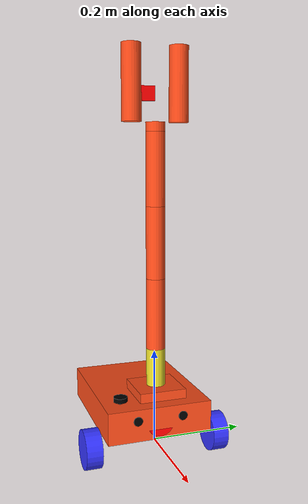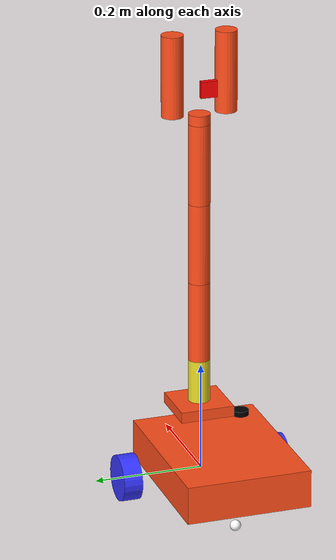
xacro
<?xml version="1.0"?>
<robot xmlns:xacro="http://www.ros.org/wiki/xacro"  name="robot">

    <xacro:arg name="use_ros2_control" default="true"/>
    <xacro:arg name="sim_mode" default="false"/>

    <xacro:include filename="robot_core.xacro" />
    <xacro:include filename="arm_robot.xacro" />
    <xacro:include filename="inertial_macros.xacro" />
    <xacro:if value="$(arg use_ros2_control)">
        <xacro:include filename="ros2_control.xacro" />
    </xacro:if>
    <xacro:unless value="$(arg use_ros2_control)">
        <xacro:include filename="gazebo_control.xacro" />
    </xacro:unless>
    <xacro:include filename="lidar.xacro" />

    <xacro:include filename="depth_camera.xacro" />

    <xacro:include filename="face.xacro" />
</robot>

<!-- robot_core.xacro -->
<robot xmlns:xacro="http://www.ros.org/wiki/xacro" >

    <xacro:include filename="inertial_macros.xacro"/>

    <xacro:property name="chassis_length" value="0.31"/>
    <xacro:property name="chassis_width" value="0.23"/>
    <xacro:property name="chassis_height" value="0.07"/>
    <xacro:property name="chassis_mass" value="1.0"/>
    <xacro:property name="wheel_radius" value="0.0425"/>
    <xacro:property name="wheel_thickness" value="0.035"/>
    <xacro:property name="wheel_mass" value="0.05"/>
    <xacro:property name="wheel_offset_x" value="0.266"/>
    <xacro:property name="wheel_offset_y" value="0.142"/>
    <xacro:property name="wheel_offset_z" value="-0.02"/>
    <xacro:property name="caster_wheel_radius" value="0.01"/>
    <xacro:property name="caster_wheel_mass" value="0.01"/>
    <xacro:property name="caster_wheel_offset_x" value="0.075"/>
    <xacro:property name="caster_wheel_offset_z" value="${wheel_offset_z - wheel_radius + caster_wheel_radius}"/>

    <material name="white">
        <color rgba="1 1 1 1" />
    </material>

    <material name="orange">
        <color rgba="1 0.3 0.1 1"/>
    </material>

    <material name="blue">
        <color rgba="0.2 0.2 1 1"/>
    </material>

    <material name="black">
        <color rgba="0 0 0 1"/>
    </material>

    <material name="red">
        <color rgba="1 0 0 1"/>
    </material>

    <!-- BASE LINK -->

    <link name="base_link">

    </link>

    <!-- BASE_FOOTPRINT LINK -->

    <joint name="base_footprint_joint" type="fixed">
        <parent link="base_link"/>
        <child link="base_footprint"/>
        <origin xyz="0 0 0" rpy="0 0 0"/>
    </joint>

    <link name="base_footprint">
    </link>

    <!-- CHASSIS LINK -->

    <joint name="chassis_joint" type="fixed">
        <parent link="base_link"/>
        <child link="chassis"/>
        <origin xyz="${-wheel_offset_x} 0 ${-wheel_offset_z}"/>
    </joint>

    <link name="chassis">
        <visual>
            <origin xyz="${chassis_length/2} 0 ${chassis_height/2}"/>
            <geometry>
                <box size="${chassis_length} ${chassis_width} ${chassis_height}"/>
            </geometry>
            <material name="orange"/>
        </visual>
        <collision>
            <origin xyz="${chassis_length/2} 0 ${chassis_height/2}"/>
            <geometry>
                <box size="${chassis_length} ${chassis_width} ${chassis_height}"/>
            </geometry>
        </collision>
        <xacro:inertial_box mass="0.5" x="${chassis_length}" y="${chassis_width}" z="${chassis_height}">
            <origin xyz="${chassis_length/2} 0 ${chassis_height/2}" rpy="0 0 0"/>
        </xacro:inertial_box>
    </link>

    <gazebo reference="chassis">
        <material>Gazebo/Orange</material>
    </gazebo>

    <!-- LEFT WHEEL LINK -->

    <joint name="left_wheel_joint" type="continuous">
        <parent link="base_link"/>
        <child link="left_wheel"/>
        <origin xyz="0 ${wheel_offset_y} 0" rpy="-${pi/2} 0 0" />
        <axis xyz="0 0 1"/>
    </joint>

    <link name="left_wheel">
        <visual>
            <geometry>
                <cylinder radius="${wheel_radius}" length="${wheel_thickness}"/>
            </geometry>
            <material name="blue"/>
        </visual>
        <collision>
            <geometry>
                <sphere radius="${wheel_radius}"/>
            </geometry>
        </collision>
        <xacro:inertial_cylinder mass="${wheel_mass}" length="${wheel_thickness}" radius="${wheel_radius}">
            <origin xyz="0 0 0" rpy="0 0 0"/>
        </xacro:inertial_cylinder>
    </link>

    <gazebo reference="left_wheel">
        <material>Gazebo/Blue</material>
    </gazebo>

    <!-- RIGHT WHEEL LINK -->

    <joint name="right_wheel_joint" type="continuous">
        <parent link="base_link"/>
        <child link="right_wheel"/>
        <origin xyz="0 ${-wheel_offset_y} 0" rpy="${pi/2} 0 0" />
        <axis xyz="0 0 -1"/>
    </joint>

    <link name="right_wheel">
        <visual>
            <geometry>
                <cylinder radius="${wheel_radius}" length="${wheel_thickness}"/>
            </geometry>
            <material name="blue"/>
        </visual>
        <collision>
            <geometry>
                <sphere radius="${wheel_radius}"/>
            </geometry>
        </collision>
        <xacro:inertial_cylinder mass="${wheel_mass}" length="${wheel_thickness}" radius="${wheel_radius}">
            <origin xyz="0 0 0" rpy="0 0 0"/>
        </xacro:inertial_cylinder>
    </link>

    <gazebo reference="right_wheel">
        <material>Gazebo/Blue</material>
    </gazebo>

    <!-- CASTER WHEEL LINK -->

    <joint name="caster_wheel_joint" type="fixed">
        <parent link="chassis"/>
        <child link="caster_wheel"/>
        <origin xyz="${caster_wheel_offset_x} 0 ${caster_wheel_offset_z}"/>
    </joint>

    <link name="caster_wheel">
        <visual>
            <geometry>
                <sphere radius="${caster_wheel_radius}"/>
            </geometry>
            <material name="white"/>
        </visual>
        <collision>
            <geometry>
                <sphere radius="${caster_wheel_radius}"/>
            </geometry>
        </collision>
        <xacro:inertial_sphere mass="${caster_wheel_mass}" radius="${caster_wheel_radius}">
            <origin xyz="0 0 0" rpy="0 0 0"/>
        </xacro:inertial_sphere>
    </link>

    <gazebo reference="caster_wheel">
        <material>Gazebo/White</material>
        <mu1 value="0.001"/>
        <mu2 value="0.001"/>
    </gazebo>

</robot>

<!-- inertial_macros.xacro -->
<robot xmlns:xacro="http://www.ros.org/wiki/xacro" >

    <!-- Specify some standard inertial calculations https://en.wikipedia.org/wiki/List_of_moments_of_inertia -->
    <!-- These make use of xacro's mathematical functionality -->

    <xacro:macro name="inertial_sphere" params="mass radius *origin">
        <inertial>
            <xacro:insert_block name="origin"/>
            <mass value="${mass}" />
            <inertia ixx="${(2/5) * mass * (radius*radius)}" ixy="0.0" ixz="0.0"
                    iyy="${(2/5) * mass * (radius*radius)}" iyz="0.0"
                    izz="${(2/5) * mass * (radius*radius)}" />
        </inertial>
    </xacro:macro>

    <xacro:macro name="inertial_box" params="mass x y z *origin">
        <inertial>
            <xacro:insert_block name="origin"/>
            <mass value="${mass}" />
            <inertia ixx="${(1/12) * mass * (y*y+z*z)}" ixy="0.0" ixz="0.0"
                    iyy="${(1/12) * mass * (x*x+z*z)}" iyz="0.0"
                    izz="${(1/12) * mass * (x*x+y*y)}" />
        </inertial>
    </xacro:macro>

    <xacro:macro name="inertial_cylinder" params="mass length radius *origin">
        <inertial>
            <xacro:insert_block name="origin"/>
            <mass value="${mass}" />
            <inertia ixx="${(1/12) * mass * (3*radius*radius + length*length)}" ixy="0.0" ixz="0.0"
                    iyy="${(1/12) * mass * (3*radius*radius + length*length)}" iyz="0.0"
                    izz="${(1/2) * mass * (radius*radius)}" />
        </inertial>
    </xacro:macro>

    <xacro:macro name="box_inertia" params="m l w h xyz rpy">
        <inertial>
            <origin xyz="${xyz}" rpy="${rpy}" />
            <mass value="${m}" />
            <inertia ixx="${(m/12) * (h*h + l*l)}" ixy="0" ixz="0"
                     iyy="${(m/12) * (w*w + l*l)}" iyz="0"
                     izz="${(m/12) * (w*w + h*h)}" />
        </inertial>
    </xacro:macro>

    <xacro:macro name="cylinder_inertia" params="m r h xyz rpy">
        <inertial>
            <origin xyz="${xyz}" rpy="${rpy}" />
            <mass value="${m}" />
            <inertia ixx="${(m/12) * (3*r*r + h*h)}" ixy="0" ixz="0"
                     iyy="${(m/12) * (3*r*r + h*h)}" iyz="0"
                     izz="${(m/2) * (r*r)}" />
        </inertial>
    </xacro:macro>

    <xacro:macro name="sphere_inertia" params="m r xyz rpy">
        <inertial>
            <origin xyz="${xyz}" rpy="${rpy}" />
            <mass value="${m}" />
            <inertia ixx="${(2/5) * m * r * r}" ixy="0" ixz="0"
                     iyy="${(2/5) * m * r * r}" iyz="0"
                     izz="${(2/5) * m * r * r}" />
        </inertial>
    </xacro:macro>
</robot>

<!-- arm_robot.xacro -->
<robot xmlns:xacro="http://www.ros.org/wiki/xacro" name="articubot">
    <xacro:include filename="inertial_macros.xacro"/>
    <xacro:property name="arm_base_length" value="0.1" />
    <xacro:property name="arm_base_width" value="0.1" />
    <xacro:property name="arm_base_height" value="0.02" />
    <xacro:property name="forearm_radius" value="0.02" />
    <xacro:property name="forearm_length" value="0.1" />
    <xacro:property name="hand_radius" value="0.02" />
    <xacro:property name="hand_length" value="0.15" />
    <xacro:macro name="default_inertial" params="mass">
        <inertial>
            <origin xyz="0 0 0" rpy="0 0 0"/>
            <mass value="${mass}" />
            <inertia ixx="1.0" ixy="0.0" ixz="0.0"
                     iyy="1.0" iyz="0.0"
                     izz="1.0" />
        </inertial>
    </xacro:macro>
    <xacro:property name="PI" value="3.14159265359" />
    <xacro:property name="effort" value="30.0" />
    <xacro:property name="velocity" value="10.0" />
    <link name="arm_base_link">
        <visual>
            <geometry>
                <box size="${arm_base_length} ${arm_base_width} ${arm_base_height}" />
            </geometry>
            <origin xyz="0 0 ${(arm_base_height / 2.0)+0.02}" rpy="0 0 0" />
            <material name="orange" />
        </visual>
        <collision>
            <geometry>
                <box size="${arm_base_length} ${arm_base_width} ${arm_base_height}" />
            </geometry>
            <origin xyz="0 0 ${arm_base_height / 2.0}" rpy="0 0 0" />
        </collision>
        <xacro:box_inertia m="0.5" l="${2*arm_base_length}" w="${2*arm_base_width}" h="${2*arm_base_height}"
                           xyz="0 0 ${arm_base_height / 2.0}" rpy="0 0 0" />
    </link>

    <link name="forearm_link">
        <visual>
            <geometry>
                <cylinder radius="${forearm_radius}" length="${forearm_length}" />
            </geometry>
            <origin xyz="0 0 ${forearm_length / 2.0}" rpy="0 0 0" />
            <material name="yellow" />
        </visual>
        <collision>
            <geometry>
                <cylinder radius="${forearm_radius}" length="${forearm_length}" />
            </geometry>
            <origin xyz="0 0 ${forearm_length / 2.0}" rpy="0 0 0" />
        </collision>
        <xacro:cylinder_inertia m="0.3" r="${2*forearm_radius}" h="${2*forearm_length}"
                                xyz="0 0 ${forearm_length / 2.0}" rpy="0 0 0" />
    </link>

    <link name="hand_1_link">
        <visual>
            <geometry>
                <cylinder radius="${hand_radius}" length="${hand_length}" />
            </geometry>
            <origin xyz="0 0 ${hand_length / 2.0}" rpy="0 0 0" />
            <material name="orange" />
        </visual>
        <collision>
             <geometry>
                <cylinder radius="${hand_radius}" length="${hand_length}" />
            </geometry>
            <origin xyz="0 0 ${hand_length / 2.0}" rpy="0 0 0" />
        </collision>
        <xacro:cylinder_inertia m="0.3" r="${2*hand_radius}" h="${2*hand_length}"
                                xyz="0 0 ${hand_length / 2.0}" rpy="0 0 0" />
    </link>

    <link name="hand_2_link">
        <visual>
            <geometry>
                <cylinder radius="${hand_radius}" length="${hand_length}" />
            </geometry>
            <origin xyz="0 0 ${hand_length / 2.0}" rpy="0 0 0" />
            <material name="orange" />
        </visual>
        <collision>
             <geometry>
                <cylinder radius="${hand_radius}" length="${hand_length}" />
            </geometry>
            <origin xyz="0 0 ${hand_length / 2.0}" rpy="0 0 0" />
        </collision>
        <xacro:cylinder_inertia m="0.3" r="${2*hand_radius}" h="${2*hand_length}"
                                xyz="0 0 ${hand_length / 2.0}" rpy="0 0 0" />
    </link>

    <link name="hand_3_link">
        <visual>
            <geometry>
                <cylinder radius="${hand_radius}" length="${hand_length}" />
            </geometry>
            <origin xyz="0 0 ${hand_length / 2.0}" rpy="0 0 0" />
            <material name="orange" />
        </visual>
        <collision>
             <geometry>
                <cylinder radius="${hand_radius}" length="${hand_length}" />
            </geometry>
            <origin xyz="0 0 ${hand_length / 2.0}" rpy="0 0 0" />
        </collision>
        <xacro:cylinder_inertia m="0.3" r="${2*hand_radius}" h="${2*hand_length}"
                                xyz="0 0 ${hand_length / 2.0}" rpy="0 0 0" />
    </link>

    <link name="claw_support">
        <visual>
            <geometry>
                <cylinder radius="${hand_radius}" length="${hand_length/8}" />
            </geometry>
            <origin xyz="0 0 ${hand_length / 16.0}" rpy="0 0 0" />
            <material name="orange" />
        </visual>
        <collision>
             <geometry>
                <cylinder radius="${hand_radius}" length="${hand_length}" />
            </geometry>
            <origin xyz="0 0 ${hand_length / 2.0}" rpy="0 0 0" />
        </collision>
        <xacro:cylinder_inertia m="0.3" r="${2*hand_radius}" h="${2*hand_length}"
                                xyz="0 0 ${hand_length / 2.0}" rpy="0 0 0" />
    </link>

    <link name="gripper_right">
        <visual>
            <geometry>
                <cylinder radius="${hand_radius}" length="${hand_length}" />
            </geometry>
            <origin xyz="0 0 ${hand_length / 2.0}" rpy="0 0 0" />
            <material name="orange" />
        </visual>
        <collision>
             <geometry>
                <cylinder radius="${hand_radius}" length="${hand_length}" />
            </geometry>
            <origin xyz="0 0 ${hand_length / 2.0}" rpy="0 0 0" />
        </collision>
        <xacro:cylinder_inertia m="0.3" r="${2*hand_radius}" h="${2*hand_length}"
                                xyz="0 0 ${hand_length / 2.0}" rpy="0 0 0" />
    </link>

    <link name="gripper_left">
        <visual>
            <geometry>
                <cylinder radius="${hand_radius}" length="${hand_length}" />
            </geometry>
            <origin xyz="0 0 ${hand_length / 2.0}" rpy="0 0 0" />
            <material name="orange" />
        </visual>
        <collision>
             <geometry>
                <cylinder radius="${hand_radius}" length="${hand_length}" />
            </geometry>
            <origin xyz="0 0 ${hand_length / 2.0}" rpy="0 0 0" />
        </collision>
        <xacro:cylinder_inertia m="0.3" r="${2*hand_radius}" h="${2*hand_length}"
                                xyz="0 0 ${hand_length / 2.0}" rpy="0 0 0" />
    </link>

    <joint name="mobile_base_arm_joint" type="fixed">
        <parent link="chassis" />
        <child link="arm_base_link" />
        <origin xyz="${8*chassis_length / 9.0} 0 ${chassis_height}" rpy="0 0 0" />
    </joint>

    <joint name="arm_base_forearm_joint" type="revolute">
        <parent link="arm_base_link" />
        <child link="forearm_link" />
        <origin xyz="0 0 ${arm_base_height}" rpy="0 0 0" />
        <axis xyz="0 0 1" />
        <limit lower="${-pi/2}" upper="${pi/2}" effort="100" velocity="100" />
        <dynamics friction="0.05" damping="0.1" />
    </joint>

    <joint name="forearm_hand_1_joint" type="revolute">
        <parent link="forearm_link" />
        <child link="hand_1_link" />
        <origin xyz="0 0 ${forearm_length}" rpy="0 0 0" />
        <axis xyz="0 1 0" />
        <limit lower="${-pi/2}" upper="${pi/2}" effort="100" velocity="100" />
        <dynamics friction="0.05" damping="0.1" />
    </joint>

    <joint name="forearm_hand_2_joint" type="revolute">
        <parent link="hand_1_link" />
        <child link="hand_2_link" />
        <origin xyz="0 0 ${hand_length}" rpy="0 0 ${pi}" />
        <axis xyz="0 1 0" />
        <limit lower="${-pi/2}" upper="${pi/2}" effort="100" velocity="100" />
        <dynamics friction="0.05" damping="0.1" />
    </joint>

    <joint name="forearm_hand_3_joint" type="revolute">
        <parent link="hand_2_link" />
        <child link="hand_3_link" />
        <origin xyz="0 0 ${hand_length}" rpy="0 0 0" />
        <axis xyz="0 1 0" />
        <limit lower="${-pi/2}" upper="${pi/2}" effort="100" velocity="100" />
        <dynamics friction="0.05" damping="0.1" />
    </joint>

    <joint name="forearm_claw_joint" type="revolute">
        <parent link="hand_3_link" />
        <child link="claw_support" />
        <origin xyz="0 0 ${hand_length}" rpy="0 0 0" />
        <axis xyz="0 0 1" />
        <limit lower="${-pi/2}" upper="${pi/2}" effort="100" velocity="100" />
        <dynamics friction="0.05" damping="0.1" />
    </joint>

    <joint name ="joint_4" type="revolute">
        <parent link="claw_support"/>
        <child link = "gripper_right"/>
        <origin xyz="0 0.05 ${hand_length/8}"/>
        <axis xyz="1 0 0"/>
        <limit lower="-${PI / 2}" upper="0.0"
               effort="100" velocity="100"/>
    </joint>
    <joint name ="joint_5" type="revolute">
        <parent link="claw_support"/>
        <child link = "gripper_left"/>
        <origin xyz="0 -.05 ${hand_length/8}"/>
        <axis xyz="1 0 0"/>
        <limit lower="0.0" upper="${PI / 2}"
               effort="100" velocity="100"/>
        <mimic joint="joint_4" multiplier="-1"/>
    </joint>
</robot>

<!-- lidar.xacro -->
<robot xmlns:xacro="http://www.ros.org/wiki/xacro" >

    <joint name="laser_joint" type="fixed">
        <parent link="chassis"/>
        <child link="laser_frame"/>
        <origin xyz="0.262 -0.075 0.08" rpy="0 0 0"/>
    </joint>

    <link name="laser_frame">
        <visual>
            <geometry>
                <cylinder radius="0.015" length="0.01"/>
            </geometry>
            <material name="black"/>
        </visual>
        <visual>
            <origin xyz="0 0 -0.01"/>
            <geometry>
                <cylinder radius="0.005" length="0.02"/>
            </geometry>
            <material name="black"/>
        </visual>
        <collision>
            <geometry>
                <cylinder radius="0.015" length="0.01"/>
            </geometry>
        </collision>
        <xacro:inertial_cylinder mass="0.1" length="0.02" radius="0.005">
            <origin xyz="0 0 0" rpy="0 0 0"/>
        </xacro:inertial_cylinder>
    </link>

    <gazebo reference="laser_frame">
        <material>Gazebo/Black</material>

        <sensor name="laser" type="ray">
            <pose> 0 0 0 0 0 0 </pose>
            <visualize>false</visualize>
            <update_rate>10</update_rate>
            <ray>
                <scan>
                    <horizontal>
                        <samples>360</samples>
                        <min_angle>-3.14</min_angle>
                        <max_angle>3.14</max_angle>
                    </horizontal>
                </scan>
                <range>
                    <min>0.3</min>
                    <max>12</max>
                </range>
            </ray>
            <plugin name="laser_controller" filename="libgazebo_ros_ray_sensor.so">
                <ros>
                    <argument>~/out:=scan</argument>
                </ros>
                <output_type>sensor_msgs/LaserScan</output_type>
                <frame_name>laser_frame</frame_name>
            </plugin>
        </sensor>
    </gazebo>

</robot>

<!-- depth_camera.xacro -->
<robot xmlns:xacro="http://www.ros.org/wiki/xacro" >
    <joint name="camera_joint" type="fixed">
        <parent link="claw_support"/>
        <child link="camera_link"/>
        <origin xyz="0.05 0 0.08" rpy="0 0 0"/>
    </joint>

    <link name="camera_link">
        <visual>
            <geometry>
                <box size="0.010 0.03 0.03"/>
            </geometry>
            <material name="red"/>
        </visual>
    </link>

    <joint name="camera_optical_joint" type="fixed">
        <parent link="camera_link"/>
        <child link="camera_link_optical"/>
        <origin xyz="0 0 0" rpy="${-pi/2} 0 ${-pi/2}"/>
    </joint>

    <link name="camera_link_optical"></link>

    <gazebo reference="camera_link">
        <material>Gazebo/Red</material>

        <sensor name="camera" type="depth">
            <pose> 0 0 0 0 0 0 </pose>
            <visualize>true</visualize>
            <update_rate>10</update_rate>
            <camera>
                <horizontal_fov>1.089</horizontal_fov>
                <image>
                    <format>B8G8R8</format>
                    <width>640</width>
                    <height>480</height>
                </image>
                <clip>
                    <near>0.05</near>
                    <far>8.0</far>
                </clip>
            </camera>
            <plugin name="camera_controller" filename="libgazebo_ros_camera.so">
                <frame_name>camera_link_optical</frame_name>
                <min_depth>0.1</min_depth>
                <max_depth>100.0</max_depth>
            </plugin>
        </sensor>
    </gazebo>

</robot>

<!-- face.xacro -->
<robot xmlns:xacro="http://www.ros.org/wiki/xacro" >

    <joint name="face_joint" type="fixed">
        <parent link="chassis"/>
        <child link="face_link"/>
        <origin xyz="${chassis_length} 0 ${chassis_height/2}" rpy="0 0 0"/>
    </joint>

    <link name="face_link">
        <visual>
            <origin xyz="0 0.05 0.01" rpy="0 ${pi/2} 0"/>
            <geometry>
                <cylinder radius="0.01" length="0.002"/>
            </geometry>
            <material name="black"/>
        </visual>

        <visual>
            <origin xyz="0 -0.05 0.01" rpy="0 ${pi/2} 0"/>
            <geometry>
                <cylinder radius="0.01" length="0.002"/>
            </geometry>
            <material name="black"/>
        </visual>

        <visual>
            <origin xyz="-0.011 0 -0.00" rpy="0 ${1.5} 0"/>
            <geometry>
                <cylinder radius="0.03" length="0.02"/>
            </geometry>
            <material name="red"/>
        </visual>
    </link>

    <gazebo reference="face_link">
        <material>Gazebo/Black</material>
    </gazebo>

</robot>
